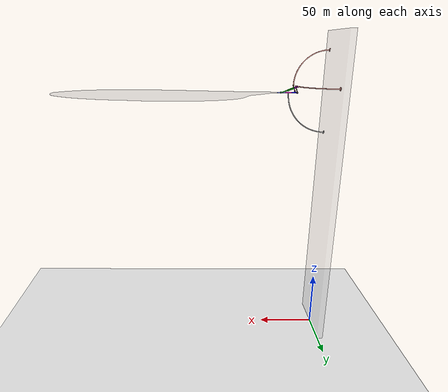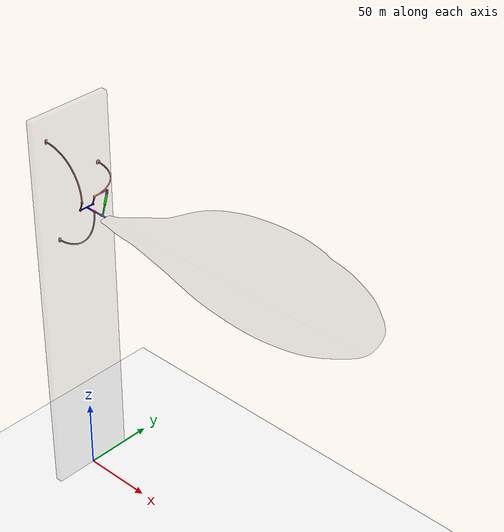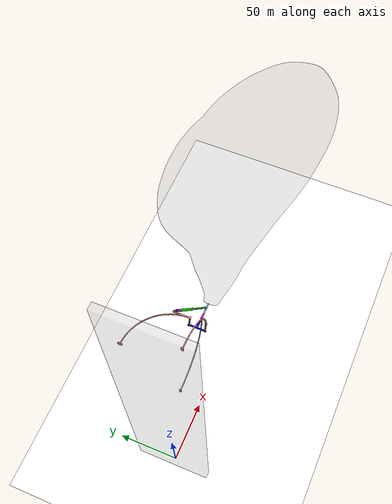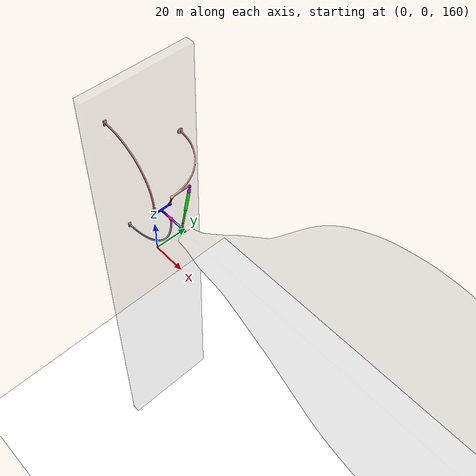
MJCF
<?xml version="1.0" ?>
<mujoco>
  <compiler coordinate="global" angle="radian"/>
  <option gravity="0.0 0.0 -9.81" timestep="0.005"/>
  <asset>
    <mesh file="./mesh_files/mount_plate.stl"/>
    <mesh file="./mesh_files/sla.stl"/>
    <mesh file="./mesh_files/scu.stl"/>
    <mesh file="./mesh_files/pwp.stl"/>
    <mesh file="./mesh_files/mu1.stl"/>
    <mesh file="./mesh_files/mu1.stl"/>
    <mesh file="./mesh_files/ax1_and_vein.stl"/>
    <mesh file="./mesh_files/wing.stl"/>
    <mesh file="./mesh_files/ax4_and_canoe.stl"/>
    <mesh file="./mesh_files/ax3.stl"/>
    <mesh file="./mesh_files/ax1.stl"/>
    <mesh file="./mesh_files/ax2.stl"/>
    <mesh file="./mesh_files/vein.stl"/>
    <mesh file="./mesh_files/ax4.stl"/>
    <mesh file="./mesh_files/canoe.stl"/>
    <material name="color_0" rgba="0.44 0.31 0.22 1.00"/>
    <material name="color_1" rgba="0.93 0.63 0.60 1.00"/>
    <material name="color_2" rgba="0.75 0.75 0.75 1.00"/>
    <material name="color_3" rgba="0.01 0.48 0.00 1.00"/>
    <material name="color_4" rgba="1.00 1.00 1.00 0.00"/>
    <material name="color_5" rgba="0.99 0.00 0.84 1.00"/>
    <material name="color_6" rgba="0.51 0.58 1.00 1.00"/>
    <material name="color_7" rgba="0.00 0.00 1.00 1.00"/>
    <material name="color_8" rgba="0.53 0.00 0.67 1.00"/>
    <material name="color_9" rgba="0.59 0.59 0.59 0.25"/>
    <material name="color_10" rgba="0.01 0.65 0.00 1.00"/>
    <material name="color_11" rgba="0.59 0.59 0.59 0.10"/>
    <texture name="grid" type="2d" builtin="checker" width="512" height="512" rgb1="1.0 1.0 1.0" rgb2="1.0 1.0 1.0"/>
    <material name="grid" texture="grid" texrepeat="10 10" texuniform="false" reflectance=".2"/>
  </asset>
  <worldbody>
    <geom name="floor" type="plane" material="grid" condim="3" pos="0.0 0.0 0.0" size="2800.0000000000027 2800.0000000000027 0.05"/>
    <light name="spotlight" mode="targetbodycom" diffuse="0.8 0.8 0.8" specular="0.2 0.2 0.2" pos="0.0 0.0 28000.00000000003" cutoff="560.0000000000006" target="mount_plate_001"/>
    <body name="mount_plate_001" pos="0.0 0.0 0.0" quat="1.0 0.0 0.0 0.0">
      <geom name="mount_plate_001_mesh" type="mesh" mesh="mount_plate" material="color_11" pos="0.0 0.0 0.0" quat="1.0 0.0 0.0 0.0"/>
      <freejoint name="mount_plate_001_joint"/>
      <body name="sla_001" pos="-0.500000000000266 19.99999999379196 233.72669307513883" quat="6.317222293885728e-09 0.7071067855762254 -0.7071067767968696 6.317220958106056e-09">
        <geom name="sla_001_mesh" type="mesh" mesh="sla" material="color_1" pos="-0.500000000000266 19.99999999379196 233.72669307513883" quat="6.317222293885728e-09 0.7071067855762254 -0.7071067767968696 6.317220958106056e-09"/>
        <joint name="sla_001_joint" type="hinge" pos="-0.500000000000266 19.99999999379196 233.72669307513883" axis="1.0 0.0 0.0" limited="false" springref="0"/>
        <body name="mu1_002" pos="29.498580022091176 -10.005130347247544 233.03488698560724" quat="0.5741579351490356 -0.00014290587552013466 0.81874454809484 -0.00010024112316336921">
          <geom name="mu1_002_mesh" type="mesh" mesh="mu1" material="color_0" pos="29.498580022091176 -10.005130347247544 233.03488698560724" quat="0.5741579351490356 -0.00014290587552013466 0.81874454809484 -0.00010024112316336921" density="0.001"/>
          <joint name="mu1_002_joint_axis1" type="hinge" pos="29.498580022091176 -10.005130347247544 233.03488698560724" axis="1.0 1.2415884083011619e-08 -2.222044605562574e-15" limited="false" springref="0"/>
          <joint name="mu1_002_joint_axis2" type="hinge" pos="29.498580022091176 -10.005130347247544 233.03488698560724" axis="1.2415884003197061e-08 -0.9999999999999998 1.7867801000000004e-08" limited="false" springref="0"/>
        </body>
        <body name="ax4_and_canoe_001" pos="30.067500232739725 3.63768699e-07 233.72669342627427" quat="0.890161215478691 0.014352641420238304 0.17423841823319997 -0.4207707044856548">
          <geom name="ax4_and_canoe_001_mesh" type="mesh" mesh="ax4_and_canoe" material="color_4" pos="30.067500232739725 3.63768699e-07 233.72669342627427" quat="0.890161215478691 0.014352641420238304 0.17423841823319997 -0.4207707044856548" density="0.001"/>
          <joint name="ax4_and_canoe_001_joint_axis1" type="hinge" pos="30.067500232739725 3.63768699e-07 233.72669342627427" axis="1.2415884003197061e-08 -0.9999999999999998 1.7867801000000004e-08" limited="false" springref="0"/>
          <joint name="ax4_and_canoe_001_joint_axis2" type="hinge" pos="30.067500232739725 3.63768699e-07 233.72669342627427" axis="-1.778155455961102e-15 -1.7867801000000024e-08 -1.0" limited="false" springref="0"/>
          <body name="ax3_001" pos="32.8769370816256 -3.575481410346475 232.17753589420738" quat="0.8901112619152284 0.014345730833481925 0.17426482084709158 -0.4208656717215888">
            <geom name="ax3_001_mesh" type="mesh" mesh="ax3" material="color_3" pos="32.8769370816256 -3.575481410346475 232.17753589420738" quat="0.8901112619152284 0.014345730833481925 0.17426482084709158 -0.4208656717215888" density="0.001"/>
            <joint name="ax3_001_joint" type="slide" pos="32.8769370816256 -3.575481410346475 232.17753589420738" axis="0.5851859757164767 -0.74410596040849 -0.3222789063983468" limited="false" springref="0"/>
          </body>
          <body name="ax4_001" pos="30.06618670714572 0.001644218318072641 233.72740013067258" quat="0.8885176292796372 0.05598285119717852 0.1543587088996535 -0.4284573862334037">
            <geom name="ax4_001_mesh" type="mesh" mesh="ax4" material="color_8" pos="30.06618670714572 0.001644218318072641 233.72740013067258" quat="0.8885176292796372 0.05598285119717852 0.1543587088996535 -0.4284573862334037" density="0.001"/>
          </body>
          <body name="canoe_001" pos="30.06334107416226 0.002454006733698989 233.72060396213718" quat="-0.8865073114634988 -0.08186484516799801 -0.14179458460624608 0.43277849949335656">
            <geom name="canoe_001_mesh" type="mesh" mesh="canoe" material="color_10" pos="30.06334107416226 0.002454006733698989 233.72060396213718" quat="-0.8865073114634988 -0.08186484516799801 -0.14179458460624608 0.43277849949335656" density="0.001"/>
          </body>
        </body>
      </body>
      <body name="scu_001" pos="-0.500000017829198 -19.999999997562195 263.66919307866766" quat="0.5000000044604502 -0.4999999992360228 0.5000000007639748 0.4999999955395524">
        <geom name="scu_001_mesh" type="mesh" mesh="scu" material="color_1" pos="-0.500000017829198 -19.999999997562195 263.66919307866766" quat="0.5000000044604502 -0.4999999992360228 0.5000000007639748 0.4999999955395524"/>
        <joint name="scu_001_joint" type="slide" pos="-0.500000017829198 -19.999999997562195 263.66919307866766" axis="0.0 0.0 1.0" limited="false" springref="0"/>
        <body name="mu1_001" pos="29.499314818359505 -20.000088078042 233.0341561461596" quat="0.5737077962021063 -0.0034605152912729124 0.8190473813344117 0.0029625225879932183">
          <geom name="mu1_001_mesh" type="mesh" mesh="mu1" material="color_0" pos="29.499314818359505 -20.000088078042 233.0341561461596" quat="0.5737077962021063 -0.0034605152912729124 0.8190473813344117 0.0029625225879932183" density="0.001"/>
          <joint name="mu1_001_joint_axis1" type="hinge" pos="29.499314818359505 -20.000088078042 233.0341561461596" axis="1.0 -1.0448849591115916e-08 7.3929458666022185e-09" limited="false" springref="0"/>
          <joint name="mu1_001_joint_axis2" type="hinge" pos="29.499314818359505 -20.000088078042 233.0341561461596" axis="1.0448849840916097e-08 1.0000000000000002 5.079270337660091e-15" limited="false" springref="0"/>
        </body>
      </body>
      <body name="pwp_001" pos="-0.499999982255449 -15.020000000570048 191.9658069223799" quat="0.5000000024124049 0.500000003937422 -0.49999999606258205 0.49999999758759106">
        <geom name="pwp_001_mesh" type="mesh" mesh="pwp" material="color_2" pos="-0.499999982255449 -15.020000000570048 191.9658069223799" quat="0.5000000024124049 0.500000003937422 -0.49999999606258205 0.49999999758759106" density="0.001"/>
        <body name="ax1_and_vein_001" pos="34.50226176995318 -15.01475636464427 226.96509766592507" quat="0.9999999810586435 -2.3458654940347877e-05 -1.4766878810312284e-05 -0.00019265083275959898">
          <geom name="ax1_and_vein_001_mesh" type="mesh" mesh="ax1_and_vein" material="color_4" pos="34.50226176995318 -15.01475636464427 226.96509766592507" quat="0.9999999810586435 -2.3458654940347877e-05 -1.4766878810312284e-05 -0.00019265083275959898" density="0.001"/>
          <joint name="ax1_and_vein_001_joint_alpha" type="hinge" pos="34.50226176995318 -15.01475636464427 226.96509766592507" axis="1.0 3.050025926265576e-09 -1.269965427264097e-08" limited="false"/>
          <joint name="ax1_and_vein_001_joint_phi" type="hinge" pos="34.50226176995318 -15.01475636464427 226.96509766592507" axis="-3.0500261205546053e-09 1.0 8.132383655379272e-15" limited="false"/>
          <joint name="ax1_and_vein_001_joint_theta" type="hinge" pos="34.50226176995318 -15.01475636464427 226.96509766592507" axis="1.2699653995085214e-08 -8.215650381887537e-15 1.0" limited="false"/>
          <body name="wing_001" pos="44.50230526874693 -15.019683952877669 227.5329508466606" quat="2.4802328271285884e-05 0.9999999827160382 -0.00018368491865693612 1.4581451709358548e-05">
            <geom name="wing_001_mesh" type="mesh" mesh="wing" material="color_9" pos="44.50230526874693 -15.019683952877669 227.5329508466606" quat="2.4802328271285884e-05 0.9999999827160382 -0.00018368491865693612 1.4581451709358548e-05" density="0.001"/>
          </body>
          <body name="ax1_001" pos="34.502077250029224 -15.01466623070618 226.96505647752977" quat="0.9999999829635295 -2.4566234341569948e-05 -1.5023460955155155e-05 -0.00018232864932454738">
            <geom name="ax1_001_mesh" type="mesh" mesh="ax1" material="color_7" pos="34.502077250029224 -15.01466623070618 226.96505647752977" quat="0.9999999829635295 -2.4566234341569948e-05 -1.5023460955155155e-05 -0.00018232864932454738" density="0.001"/>
          </body>
          <body name="ax2_001" pos="34.50196772923989 -15.014653391411114 226.96508887245588" quat="0.999999983430619 -2.4310783298169412e-05 -1.4976572323082307e-05 -0.0001797872353357594">
            <geom name="ax2_001_mesh" type="mesh" mesh="ax2" material="color_5" pos="34.50196772923989 -15.014653391411114 226.96508887245588" quat="0.999999983430619 -2.4310783298169412e-05 -1.4976572323082307e-05 -0.0001797872353357594" density="0.001"/>
          </body>
          <body name="vein_001" pos="34.50161128782199 -15.012412769833608 226.96507981087362" quat="0.9999999852304113 -2.4437966385263198e-05 -1.501266246790349e-05 -0.00016945967995089936">
            <geom name="vein_001_mesh" type="mesh" mesh="vein" material="color_6" pos="34.50161128782199 -15.012412769833608 226.96507981087362" quat="0.9999999852304113 -2.4437966385263198e-05 -1.501266246790349e-05 -0.00016945967995089936" density="0.001"/>
          </body>
        </body>
      </body>
    </body>
  </worldbody>
  <equality>
    <connect body1="mu1_001" body2="ax1_and_vein_001" anchor="27.704696502575416 -20.012084376937338 228.10013146108477" solimp="1.0 1.0 0.001 0.5 2.0"/>
    <connect body1="mu1_002" body2="ax1_and_vein_001" anchor="27.708549526085847 -10.012085130230378 228.0996623448919" solimp="1.0 1.0 0.001 0.5 2.0"/>
    <connect body1="ax3_001" body2="ax1_and_vein_001" anchor="41.302520961391664 -14.299849836455998 227.53276489697703" solimp="1.0 1.0 0.001 0.5 2.0"/>
  </equality>
  <actuator>
    <position name="sla_001_position" joint="sla_001_joint" gear="1" forcelimited="false" ctrllimited="false" kp="6.0e11"/>
    <velocity name="sla_001_velocity" joint="sla_001_joint" gear="1" forcelimited="false" ctrllimited="false" kv="1.0e10"/>
    <position name="scu_001_position" joint="scu_001_joint" gear="1" forcelimited="false" ctrllimited="false" kp="6.0e8"/>
    <velocity name="scu_001_velocity" joint="scu_001_joint" gear="1" forcelimited="false" ctrllimited="false" kv="1.0e8"/>
    <position name="ax3_001_position" joint="ax3_001_joint" gear="1" forcelimited="false" ctrllimited="false" kp="3.0e5"/>
    <velocity name="ax3_001_velocity" joint="ax3_001_joint" gear="1" forcelimited="false" ctrllimited="false" kv="1.0e4"/>
  </actuator>
</mujoco>
